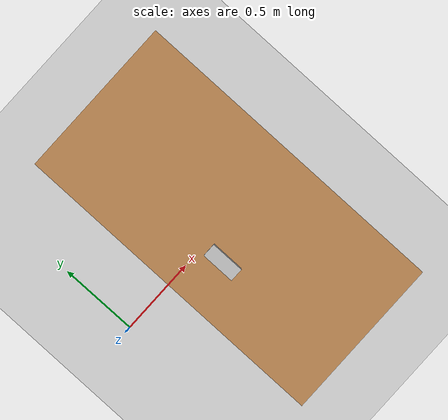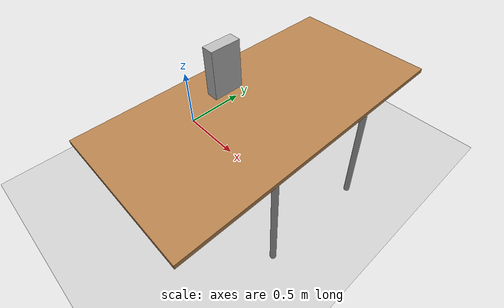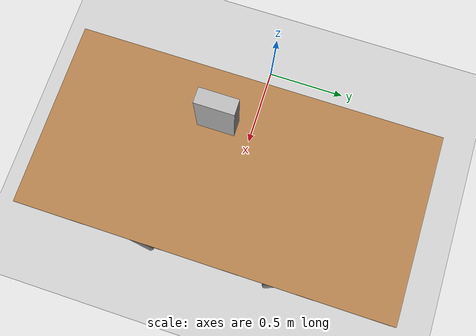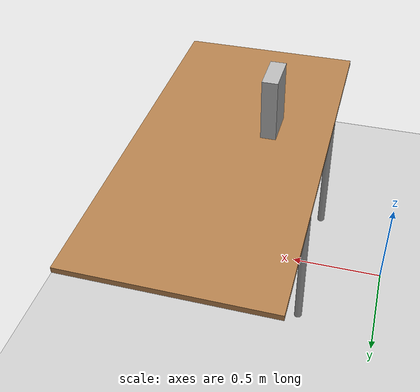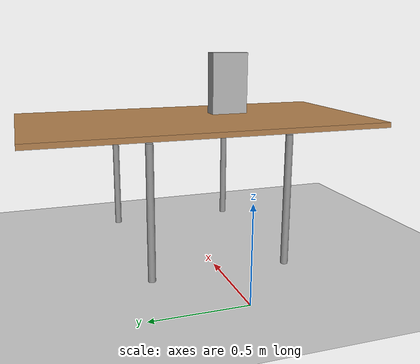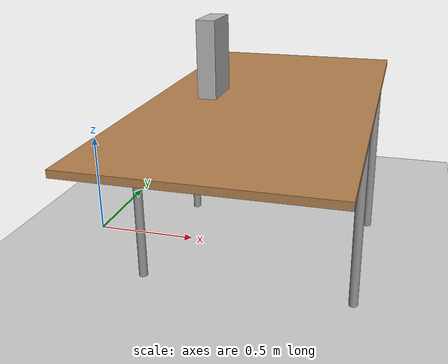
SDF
<?xml version="1.0" ?>
<sdf version="1.4">
  <world name="default">
    <physics type="ode">
      <gravity>0 0 -9.81</gravity>
      <ode>
        <solver>
          <type>quick</type>
          <iters>20</iters>
          <sor>1.0</sor>
        </solver>
        <constraints>
          <cfm>0.0</cfm>
          <erp>0.2</erp>
          <contact_max_correcting_vel>100.0</contact_max_correcting_vel>
          <contact_surface_layer>0.0</contact_surface_layer>
        </constraints>
      </ode>
      <real_time_update_rate>1000</real_time_update_rate>
      <max_step_size>0.001</max_step_size>
    </physics>
    <light type="directional" name="light1">
      <cast_shadows>true</cast_shadows>
      <pose>-2 0 4 0 0 0</pose>
      <diffuse>1.0 1.0 1.0 1</diffuse>
      <specular>0.1 0.1 0.1 1</specular>
      <attenuation>
        <range>20</range>
        <constant>0.9</constant>
        <linear>0.01</linear>
        <quadratic>0.001</quadratic>
      </attenuation>
      <direction>0.2 0.0 -1.0</direction>
    </light>
    <!-- A ground plane -->
    <include>
      <uri>model://ground_plane</uri>
    </include>
    <!-- A table -->
    <include>
      <uri>model://table1</uri>
      <name>table1</name>
      <pose>0.88 0 0 0 0 0</pose>
    </include>

    <include>
      <uri>model://cereal3</uri>
      <name>cereal3</name>
      <pose>0.681849 -0.135557 0.979998 0.000012 0.000012 -0.000100</pose>
    </include>

    <gui fullscreen="0">
      <camera name="user_camera">
        <pose>1.152670 -0.041479 3.496780 0.000000 1.123640 3.132190</pose>
        <view_controller>orbit</view_controller>
      </camera>
    </gui>
  </world>
</sdf>

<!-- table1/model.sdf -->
<sdf version='1.6'>
  <model name='table1'>
    <link name='link'>
      <velocity_decay>
        <linear>0</linear>
        <angular>0</angular>
      </velocity_decay>
      <self_collide>0</self_collide>
      <kinematic>0</kinematic>
      <gravity>1</gravity>
      <enable_wind>0</enable_wind>
      <pose frame=''>0 0 0 0 -0 0</pose>
      <inertial>
        <mass>1</mass>
        <pose frame=''>0 0 0 0 -0 0</pose>
        <inertia>
          <ixx>1</ixx>
          <ixy>0</ixy>
          <ixz>0</ixz>
          <iyy>1</iyy>
          <iyz>0</iyz>
          <izz>1</izz>
        </inertia>
      </inertial>
      <visual name='visual1'>
        <pose frame=''>0 0 0.75 0 -0 0</pose>
        <geometry>
          <box>
            <size>1 2.0 0.03</size>
          </box>
        </geometry>
        <material>
          <script>
            <uri>file://media/materials/scripts/gazebo.material</uri>
            <name>Gazebo/Wood</name>
          </script>
          <shader type='vertex'>
            <normal_map>__default__</normal_map>
          </shader>
          <ambient>1 1 1 1</ambient>
          <diffuse>1 1 1 1</diffuse>
          <specular>0.2 0.2 0.2 1</specular>
          <emissive>0 0 0 1</emissive>
        </material>
        <transparency>0</transparency>
        <cast_shadows>1</cast_shadows>
      </visual>
      <visual name='front_left_leg'>
        <pose frame=''>0.48 0.38 0.3525 0 -0 0</pose>
        <geometry>
          <cylinder>
            <radius>0.02</radius>
            <length>0.75</length>
          </cylinder>
        </geometry>
        <material>
          <script>
            <uri>file://media/materials/scripts/gazebo.material</uri>
            <name>Gazebo/Grey</name>
          </script>
          <shader type='vertex'>
            <normal_map>__default__</normal_map>
          </shader>
          <ambient>0.3 0.3 0.3 1</ambient>
          <diffuse>0.7 0.7 0.7 1</diffuse>
          <specular>0.01 0.01 0.01 1</specular>
          <emissive>0 0 0 1</emissive>
        </material>
        <transparency>0</transparency>
        <cast_shadows>1</cast_shadows>
      </visual>
      <visual name='front_right_leg'>
        <pose frame=''>0.48 -0.38 0.3525 0 -0 0</pose>
        <geometry>
          <cylinder>
            <radius>0.02</radius>
            <length>0.75</length>
          </cylinder>
        </geometry>
        <material>
          <script>
            <uri>file://media/materials/scripts/gazebo.material</uri>
            <name>Gazebo/Grey</name>
          </script>
          <shader type='vertex'>
            <normal_map>__default__</normal_map>
          </shader>
          <ambient>0.3 0.3 0.3 1</ambient>
          <diffuse>0.7 0.7 0.7 1</diffuse>
          <specular>0.01 0.01 0.01 1</specular>
          <emissive>0 0 0 1</emissive>
        </material>
        <transparency>0</transparency>
        <cast_shadows>1</cast_shadows>
      </visual>
      <visual name='back_right_leg'>
        <pose frame=''>-0.48 -0.38 0.3525 0 -0 0</pose>
        <geometry>
          <cylinder>
            <radius>0.02</radius>
            <length>0.75</length>
          </cylinder>
        </geometry>
        <material>
          <script>
            <uri>file://media/materials/scripts/gazebo.material</uri>
            <name>Gazebo/Grey</name>
          </script>
          <shader type='vertex'>
            <normal_map>__default__</normal_map>
          </shader>
          <ambient>0.3 0.3 0.3 1</ambient>
          <diffuse>0.7 0.7 0.7 1</diffuse>
          <specular>0.01 0.01 0.01 1</specular>
          <emissive>0 0 0 1</emissive>
        </material>
        <transparency>0</transparency>
        <cast_shadows>1</cast_shadows>
      </visual>
      <visual name='back_left_leg'>
        <pose frame=''>-0.48 0.38 0.3525 0 -0 0</pose>
        <geometry>
          <cylinder>
            <radius>0.02</radius>
            <length>0.75</length>
          </cylinder>
        </geometry>
        <material>
          <script>
            <uri>file://media/materials/scripts/gazebo.material</uri>
            <name>Gazebo/Grey</name>
          </script>
          <shader type='vertex'>
            <normal_map>__default__</normal_map>
          </shader>
          <ambient>0.3 0.3 0.3 1</ambient>
          <diffuse>0.7 0.7 0.7 1</diffuse>
          <specular>0.01 0.01 0.01 1</specular>
          <emissive>0 0 0 1</emissive>
        </material>
        <transparency>0</transparency>
        <cast_shadows>1</cast_shadows>
      </visual>
      <collision name='surface'>
        <laser_retro>0</laser_retro>
        <max_contacts>10</max_contacts>
        <pose frame=''>0 0 0.75 0 -0 0</pose>
        <geometry>
          <box>
            <size>1 2.0 0.015</size>
          </box>
        </geometry>
        <surface>
          <friction>
            <ode>
              <mu>1</mu>
              <mu2>1</mu2>
              <fdir1>0 0 0</fdir1>
              <slip1>0</slip1>
              <slip2>0</slip2>
            </ode>
            <torsional>
              <coefficient>1</coefficient>
              <patch_radius>0</patch_radius>
              <surface_radius>0</surface_radius>
              <use_patch_radius>1</use_patch_radius>
              <ode>
                <slip>0</slip>
              </ode>
            </torsional>
          </friction>
          <bounce>
            <restitution_coefficient>0</restitution_coefficient>
            <threshold>1e+06</threshold>
          </bounce>
          <contact>
            <collide_without_contact>0</collide_without_contact>
            <collide_without_contact_bitmask>1</collide_without_contact_bitmask>
            <collide_bitmask>1</collide_bitmask>
            <ode>
              <soft_cfm>0</soft_cfm>
              <soft_erp>0.2</soft_erp>
              <kp>1e+13</kp>
              <kd>1</kd>
              <max_vel>0.01</max_vel>
              <min_depth>0</min_depth>
            </ode>
            <bullet>
              <split_impulse>1</split_impulse>
              <split_impulse_penetration_threshold>-0.01</split_impulse_penetration_threshold>
              <soft_cfm>0</soft_cfm>
              <soft_erp>0.2</soft_erp>
              <kp>1e+13</kp>
              <kd>1</kd>
            </bullet>
          </contact>
        </surface>
      </collision>
      <collision name='front_left_leg'>
        <laser_retro>0</laser_retro>
        <max_contacts>10</max_contacts>
        <pose frame=''>0.48 0.38 0.3525 0 -0 0</pose>
        <geometry>
          <cylinder>
            <radius>0.02</radius>
            <length>0.75</length>
          </cylinder>
        </geometry>
        <surface>
          <friction>
            <ode>
              <mu>1</mu>
              <mu2>1</mu2>
              <fdir1>0 0 0</fdir1>
              <slip1>0</slip1>
              <slip2>0</slip2>
            </ode>
            <torsional>
              <coefficient>1</coefficient>
              <patch_radius>0</patch_radius>
              <surface_radius>0</surface_radius>
              <use_patch_radius>1</use_patch_radius>
              <ode>
                <slip>0</slip>
              </ode>
            </torsional>
          </friction>
          <bounce>
            <restitution_coefficient>0</restitution_coefficient>
            <threshold>1e+06</threshold>
          </bounce>
          <contact>
            <collide_without_contact>0</collide_without_contact>
            <collide_without_contact_bitmask>1</collide_without_contact_bitmask>
            <collide_bitmask>1</collide_bitmask>
            <ode>
              <soft_cfm>0</soft_cfm>
              <soft_erp>0.2</soft_erp>
              <kp>1e+13</kp>
              <kd>1</kd>
              <max_vel>0.01</max_vel>
              <min_depth>0</min_depth>
            </ode>
            <bullet>
              <split_impulse>1</split_impulse>
              <split_impulse_penetration_threshold>-0.01</split_impulse_penetration_threshold>
              <soft_cfm>0</soft_cfm>
              <soft_erp>0.2</soft_erp>
              <kp>1e+13</kp>
              <kd>1</kd>
            </bullet>
          </contact>
        </surface>
      </collision>
      <collision name='front_right_leg'>
        <laser_retro>0</laser_retro>
        <max_contacts>10</max_contacts>
        <pose frame=''>0.48 -0.38 0.3525 0 -0 0</pose>
        <geometry>
          <cylinder>
            <radius>0.02</radius>
            <length>0.75</length>
          </cylinder>
        </geometry>
        <surface>
          <friction>
            <ode>
              <mu>1</mu>
              <mu2>1</mu2>
              <fdir1>0 0 0</fdir1>
              <slip1>0</slip1>
              <slip2>0</slip2>
            </ode>
            <torsional>
              <coefficient>1</coefficient>
              <patch_radius>0</patch_radius>
              <surface_radius>0</surface_radius>
              <use_patch_radius>1</use_patch_radius>
              <ode>
                <slip>0</slip>
              </ode>
            </torsional>
          </friction>
          <bounce>
            <restitution_coefficient>0</restitution_coefficient>
            <threshold>1e+06</threshold>
          </bounce>
          <contact>
            <collide_without_contact>0</collide_without_contact>
            <collide_without_contact_bitmask>1</collide_without_contact_bitmask>
            <collide_bitmask>1</collide_bitmask>
            <ode>
              <soft_cfm>0</soft_cfm>
              <soft_erp>0.2</soft_erp>
              <kp>1e+13</kp>
              <kd>1</kd>
              <max_vel>0.01</max_vel>
              <min_depth>0</min_depth>
            </ode>
            <bullet>
              <split_impulse>1</split_impulse>
              <split_impulse_penetration_threshold>-0.01</split_impulse_penetration_threshold>
              <soft_cfm>0</soft_cfm>
              <soft_erp>0.2</soft_erp>
              <kp>1e+13</kp>
              <kd>1</kd>
            </bullet>
          </contact>
        </surface>
      </collision>
      <collision name='back_right_leg'>
        <laser_retro>0</laser_retro>
        <max_contacts>10</max_contacts>
        <pose frame=''>-0.48 -0.38 0.3525 0 -0 0</pose>
        <geometry>
          <cylinder>
            <radius>0.02</radius>
            <length>0.75</length>
          </cylinder>
        </geometry>
        <surface>
          <friction>
            <ode>
              <mu>1</mu>
              <mu2>1</mu2>
              <fdir1>0 0 0</fdir1>
              <slip1>0</slip1>
              <slip2>0</slip2>
            </ode>
            <torsional>
              <coefficient>1</coefficient>
              <patch_radius>0</patch_radius>
              <surface_radius>0</surface_radius>
              <use_patch_radius>1</use_patch_radius>
              <ode>
                <slip>0</slip>
              </ode>
            </torsional>
          </friction>
          <bounce>
            <restitution_coefficient>0</restitution_coefficient>
            <threshold>1e+06</threshold>
          </bounce>
          <contact>
            <collide_without_contact>0</collide_without_contact>
            <collide_without_contact_bitmask>1</collide_without_contact_bitmask>
            <collide_bitmask>1</collide_bitmask>
            <ode>
              <soft_cfm>0</soft_cfm>
              <soft_erp>0.2</soft_erp>
              <kp>1e+13</kp>
              <kd>1</kd>
              <max_vel>0.01</max_vel>
              <min_depth>0</min_depth>
            </ode>
            <bullet>
              <split_impulse>1</split_impulse>
              <split_impulse_penetration_threshold>-0.01</split_impulse_penetration_threshold>
              <soft_cfm>0</soft_cfm>
              <soft_erp>0.2</soft_erp>
              <kp>1e+13</kp>
              <kd>1</kd>
            </bullet>
          </contact>
        </surface>
      </collision>
      <collision name='back_left_leg'>
        <laser_retro>0</laser_retro>
        <max_contacts>10</max_contacts>
        <pose frame=''>-0.48 0.38 0.3525 0 -0 0</pose>
        <geometry>
          <cylinder>
            <radius>0.02</radius>
            <length>0.75</length>
          </cylinder>
        </geometry>
        <surface>
          <friction>
            <ode>
              <mu>1</mu>
              <mu2>1</mu2>
              <fdir1>0 0 0</fdir1>
              <slip1>0</slip1>
              <slip2>0</slip2>
            </ode>
            <torsional>
              <coefficient>1</coefficient>
              <patch_radius>0</patch_radius>
              <surface_radius>0</surface_radius>
              <use_patch_radius>1</use_patch_radius>
              <ode>
                <slip>0</slip>
              </ode>
            </torsional>
          </friction>
          <bounce>
            <restitution_coefficient>0</restitution_coefficient>
            <threshold>1e+06</threshold>
          </bounce>
          <contact>
            <collide_without_contact>0</collide_without_contact>
            <collide_without_contact_bitmask>1</collide_without_contact_bitmask>
            <collide_bitmask>1</collide_bitmask>
            <ode>
              <soft_cfm>0</soft_cfm>
              <soft_erp>0.2</soft_erp>
              <kp>1e+13</kp>
              <kd>1</kd>
              <max_vel>0.01</max_vel>
              <min_depth>0</min_depth>
            </ode>
            <bullet>
              <split_impulse>1</split_impulse>
              <split_impulse_penetration_threshold>-0.01</split_impulse_penetration_threshold>
              <soft_cfm>0</soft_cfm>
              <soft_erp>0.2</soft_erp>
              <kp>1e+13</kp>
              <kd>1</kd>
            </bullet>
          </contact>
        </surface>
      </collision>
    </link>
    <static>1</static>
    <allow_auto_disable>1</allow_auto_disable>
  </model>
</sdf>

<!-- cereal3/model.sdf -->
<sdf version='1.6'>
  <model name='cereal3'>
    <link name='link_0'>
      <inertial>
        <mass>0.2</mass>
        <inertia>
          <ixx>0.0024816</ixx>
          <ixy>0</ixy>
          <ixz>0</ixz>
          <iyy>0.0019217</iyy>
          <iyz>0</iyz>
          <izz>0.0007733</izz>
        </inertia>
        <pose frame=''>0 0 0 0 -0 0</pose>
      </inertial>
      <pose frame=''>-0 -0 -0.0 0 -0 0</pose>
      <gravity>1</gravity>
      <self_collide>0</self_collide>
      <kinematic>0</kinematic>
      <enable_wind>0</enable_wind>
      <visual name='visual'>
        <pose frame=''>0.0 0.00 0.0 0 0 0</pose>
        <geometry>
          <mesh>
          	<uri>model:///cereal3/meshes/cereal3.dae</uri>
	  				<scale>0.5 0.5 0.5</scale>
        	</mesh>
        </geometry>
        <transparency>0</transparency>
        <cast_shadows>1</cast_shadows>
      </visual>
      <collision name='collision'>
        <laser_retro>0</laser_retro>
        <max_contacts>10</max_contacts>
        <pose frame=''>0 0 0 0 -0 0</pose>
        <geometry>
          <box>
            <size>0.08 0.20 0.33</size>
          </box>
        </geometry>
        <surface>
          <friction>
            <ode>
              <mu>1</mu>
              <mu2>1</mu2>
              <fdir1>0 0 0</fdir1>
              <slip1>0</slip1>
              <slip2>0</slip2>
            </ode>
            <torsional>
              <coefficient>1</coefficient>
              <patch_radius>0</patch_radius>
              <surface_radius>0</surface_radius>
              <use_patch_radius>1</use_patch_radius>
              <ode>
                <slip>0</slip>
              </ode>
            </torsional>
          </friction>
          <bounce>
            <restitution_coefficient>0</restitution_coefficient>
            <threshold>1e+06</threshold>
          </bounce>
          <contact>
            <collide_without_contact>0</collide_without_contact>
            <collide_without_contact_bitmask>1</collide_without_contact_bitmask>
            <collide_bitmask>1</collide_bitmask>
            <ode>
              <soft_cfm>0</soft_cfm>
              <soft_erp>0.2</soft_erp>
              <kp>1e+13</kp>
              <kd>1</kd>
              <max_vel>0.01</max_vel>
              <min_depth>0.001</min_depth>
            </ode>
            <bullet>
              <split_impulse>1</split_impulse>
              <split_impulse_penetration_threshold>-0.01</split_impulse_penetration_threshold>
              <soft_cfm>0</soft_cfm>
              <soft_erp>0.2</soft_erp>
              <kp>1e+13</kp>
              <kd>1</kd>
            </bullet>
          </contact>
        </surface>
      </collision>
    </link>
    <static>0</static>
    <allow_auto_disable>1</allow_auto_disable>
  </model>
</sdf>
